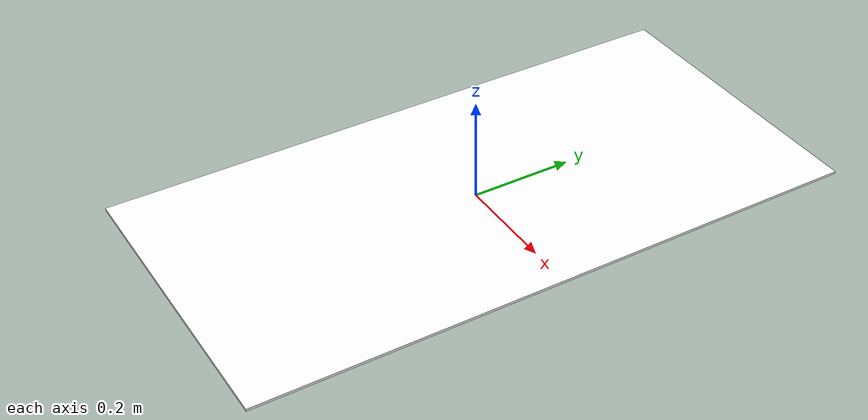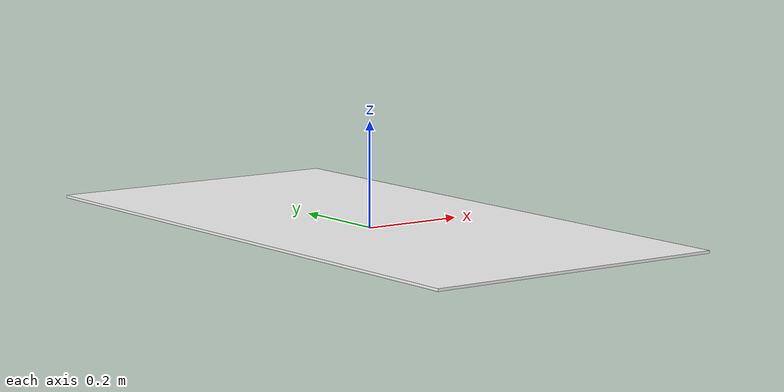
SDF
<?xml version="1.0" ?>
<sdf version="1.6">
  <model name="dust_plume_marker">
    <static>true</static>
    <link name="dust_plume_hazard_zone">

      <visual name="dust_plume_visual">
        <pose>0 0 0.01 0 0 0</pose>

        <!-- Box base (square) with circular alpha PNG projected on top -->
        <geometry>
          <box>
            <size>0.6 1.2 0.005</size>  <!-- Square box, size matches PNG resolution in meters -->
          </box>
        </geometry>

        <material>
          <ambient>1 1 1 1</ambient>
          <diffuse>1 1 1 1</diffuse>
          <specular>0.1 0.1 0.1 1</specular>
          <pbr>
            <metal>
              <albedo_map>model://hazard_overlays/dust_plume_marker/materials/textures/oval_fade_dust_plume_hazard_texture.png</albedo_map>
              <roughness>0.4</roughness>
              <metalness>0.0</metalness>
            </metal>
          </pbr>
        </material>

        <cast_shadows>false</cast_shadows>
      </visual>

    </link>
    <plugin filename="libdust_plume_sensor.so"
        name="dust_plume_sensor">
        <target_model>agilex_diff_drive</target_model>
        <radius>5</radius>
        <height>3</height>
    <!-- radius, height, etc. -->
  </plugin>

  </model>
</sdf>
